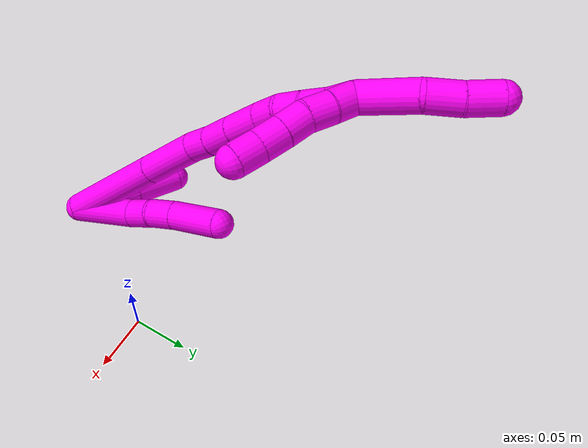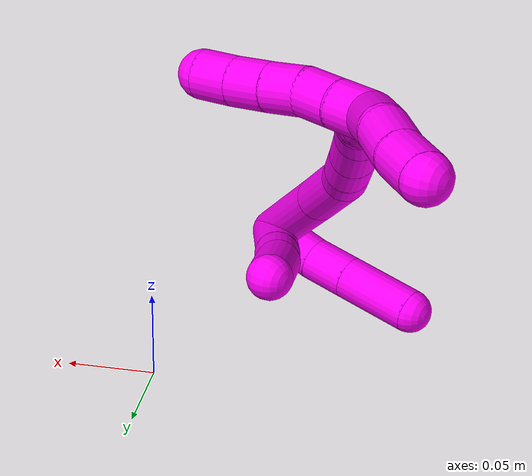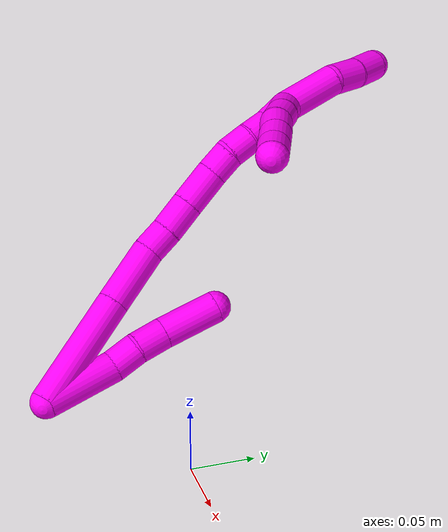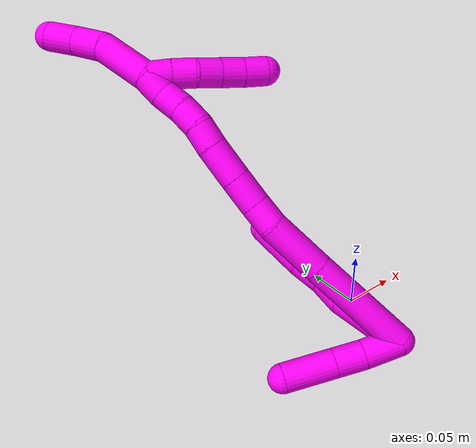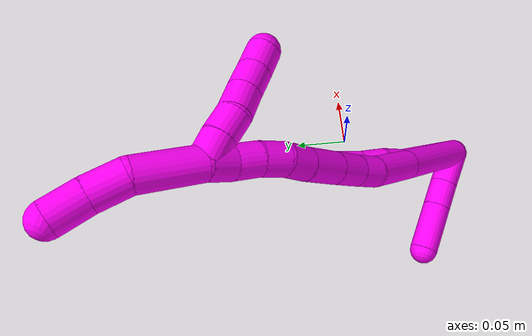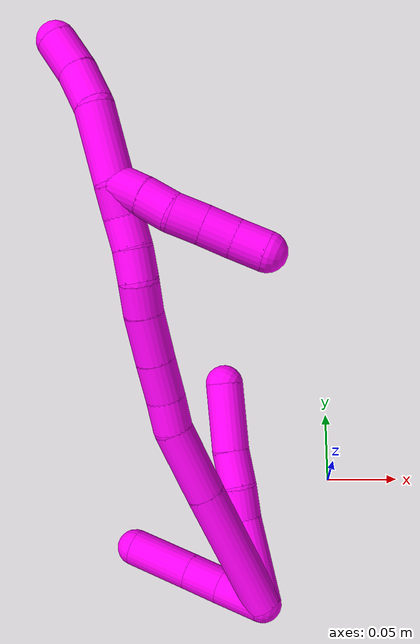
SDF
<sdf version="1.7">
 <world name="default">
  <model name="10">
   <static>0</static>
   <link name="10">
    <collision name="collision-cylinder-e_1_2_8">
     <pose>0.012486 0.019746 0.01714 -0.855941 0.445515 -0.205928</pose>
     <geometry><cylinder><radius>0.0125</radius><length>0.057951</length></cylinder></geometry>
     <surface>
      <friction><ode><mu>1.16</mu><mu2>1.16</mu2><slip1>0</slip1><slip2>0</slip2></ode></friction>
      <contact><ode><kp>1e+06</kp><kd>1</kd><max_vel>0</max_vel><min_depth>0.001</min_depth></ode></contact>
     </surface>
    </collision>
    <visual name="visual-cylinder-e_1_2_8">
     <pose>0.012486 0.019746 0.01714 -0.855941 0.445515 -0.205928</pose>
     <geometry><cylinder><radius>0.0125</radius><length>0.057951</length></cylinder></geometry>
     <material><ambient>1 0 0.964706 1</ambient></material>
    </visual>
    <collision name="collision-cylinder-e_2_8_9">
     <pose>0.032205 0.046295 0.039671 -0.900559 0.694647 -0.346472</pose>
     <geometry><cylinder><radius>0.0125</radius><length>0.022598</length></cylinder></geometry>
     <surface>
      <friction><ode><mu>1.16</mu><mu2>1.16</mu2><slip1>0</slip1><slip2>0</slip2></ode></friction>
      <contact><ode><kp>1e+06</kp><kd>1</kd><max_vel>0</max_vel><min_depth>0.001</min_depth></ode></contact>
     </surface>
    </collision>
    <visual name="visual-cylinder-e_2_8_9">
     <pose>0.032205 0.046295 0.039671 -0.900559 0.694647 -0.346472</pose>
     <geometry><cylinder><radius>0.0125</radius><length>0.022598</length></cylinder></geometry>
     <material><ambient>1 0 0.964706 1</ambient></material>
    </visual>
    <collision name="collision-cylinder-e_3_9_10">
     <pose>0.045176 0.061185 0.051814 -0.87528 0.49877 -0.237218</pose>
     <geometry><cylinder><radius>0.0125</radius><length>0.02399</length></cylinder></geometry>
     <surface>
      <friction><ode><mu>1.16</mu><mu2>1.16</mu2><slip1>0</slip1><slip2>0</slip2></ode></friction>
      <contact><ode><kp>1e+06</kp><kd>1</kd><max_vel>0</max_vel><min_depth>0.001</min_depth></ode></contact>
     </surface>
    </collision>
    <visual name="visual-cylinder-e_3_9_10">
     <pose>0.045176 0.061185 0.051814 -0.87528 0.49877 -0.237218</pose>
     <geometry><cylinder><radius>0.0125</radius><length>0.02399</length></cylinder></geometry>
     <material><ambient>1 0 0.964706 1</ambient></material>
    </visual>
    <collision name="collision-cylinder-e_4_10_6">
     <pose>0.062346 0.085788 0.069202 -0.998593 0.527023 -0.292179</pose>
     <geometry><cylinder><radius>0.0125</radius><length>0.045461</length></cylinder></geometry>
     <surface>
      <friction><ode><mu>1.16</mu><mu2>1.16</mu2><slip1>0</slip1><slip2>0</slip2></ode></friction>
      <contact><ode><kp>1e+06</kp><kd>1</kd><max_vel>0</max_vel><min_depth>0.001</min_depth></ode></contact>
     </surface>
    </collision>
    <visual name="visual-cylinder-e_4_10_6">
     <pose>0.062346 0.085788 0.069202 -0.998593 0.527023 -0.292179</pose>
     <geometry><cylinder><radius>0.0125</radius><length>0.045461</length></cylinder></geometry>
     <material><ambient>1 0 0.964706 1</ambient></material>
    </visual>
    <collision name="collision-cylinder-e_1_2_11">
     <pose>-0.003907 0.001347 0.015277 -0.087951 -0.249436 0.011033</pose>
     <geometry><cylinder><radius>0.0125</radius><length>0.031652</length></cylinder></geometry>
     <surface>
      <friction><ode><mu>1.16</mu><mu2>1.16</mu2><slip1>0</slip1><slip2>0</slip2></ode></friction>
      <contact><ode><kp>1e+06</kp><kd>1</kd><max_vel>0</max_vel><min_depth>0.001</min_depth></ode></contact>
     </surface>
    </collision>
    <visual name="visual-cylinder-e_1_2_11">
     <pose>-0.003907 0.001347 0.015277 -0.087951 -0.249436 0.011033</pose>
     <geometry><cylinder><radius>0.0125</radius><length>0.031652</length></cylinder></geometry>
     <material><ambient>1 0 0.964706 1</ambient></material>
    </visual>
    <collision name="collision-cylinder-e_2_11_12">
     <pose>-0.009508 0.003341 0.042941 -0.052161 -0.135733 0.003546</pose>
     <geometry><cylinder><radius>0.0125</radius><length>0.025038</length></cylinder></geometry>
     <surface>
      <friction><ode><mu>1.16</mu><mu2>1.16</mu2><slip1>0</slip1><slip2>0</slip2></ode></friction>
      <contact><ode><kp>1e+06</kp><kd>1</kd><max_vel>0</max_vel><min_depth>0.001</min_depth></ode></contact>
     </surface>
    </collision>
    <visual name="visual-cylinder-e_2_11_12">
     <pose>-0.009508 0.003341 0.042941 -0.052161 -0.135733 0.003546</pose>
     <geometry><cylinder><radius>0.0125</radius><length>0.025038</length></cylinder></geometry>
     <material><ambient>1 0 0.964706 1</ambient></material>
    </visual>
    <collision name="collision-cylinder-e_3_12_5">
     <pose>-0.014154 0.005041 0.076755 -0.049145 -0.136757 0.003366</pose>
     <geometry><cylinder><radius>0.0125</radius><length>0.043309</length></cylinder></geometry>
     <surface>
      <friction><ode><mu>1.16</mu><mu2>1.16</mu2><slip1>0</slip1><slip2>0</slip2></ode></friction>
      <contact><ode><kp>1e+06</kp><kd>1</kd><max_vel>0</max_vel><min_depth>0.001</min_depth></ode></contact>
     </surface>
    </collision>
    <visual name="visual-cylinder-e_3_12_5">
     <pose>-0.014154 0.005041 0.076755 -0.049145 -0.136757 0.003366</pose>
     <geometry><cylinder><radius>0.0125</radius><length>0.043309</length></cylinder></geometry>
     <material><ambient>1 0 0.964706 1</ambient></material>
    </visual>
    <collision name="collision-cylinder-e_1_2_13">
     <pose>0.032576 0.01325 0.029068 -0.427705 0.795173 -0.181901</pose>
     <geometry><cylinder><radius>0.0125</radius><length>0.091252</length></cylinder></geometry>
     <surface>
      <friction><ode><mu>1.16</mu><mu2>1.16</mu2><slip1>0</slip1><slip2>0</slip2></ode></friction>
      <contact><ode><kp>1e+06</kp><kd>1</kd><max_vel>0</max_vel><min_depth>0.001</min_depth></ode></contact>
     </surface>
    </collision>
    <visual name="visual-cylinder-e_1_2_13">
     <pose>0.032576 0.01325 0.029068 -0.427705 0.795173 -0.181901</pose>
     <geometry><cylinder><radius>0.0125</radius><length>0.091252</length></cylinder></geometry>
     <material><ambient>1 0 0.964706 1</ambient></material>
    </visual>
    <collision name="collision-cylinder-e_2_13_14">
     <pose>0.08292 0.033891 0.073636 -0.444864 0.802432 -0.191313</pose>
     <geometry><cylinder><radius>0.0125</radius><length>0.049419</length></cylinder></geometry>
     <surface>
      <friction><ode><mu>1.16</mu><mu2>1.16</mu2><slip1>0</slip1><slip2>0</slip2></ode></friction>
      <contact><ode><kp>1e+06</kp><kd>1</kd><max_vel>0</max_vel><min_depth>0.001</min_depth></ode></contact>
     </surface>
    </collision>
    <visual name="visual-cylinder-e_2_13_14">
     <pose>0.08292 0.033891 0.073636 -0.444864 0.802432 -0.191313</pose>
     <geometry><cylinder><radius>0.0125</radius><length>0.049419</length></cylinder></geometry>
     <material><ambient>1 0 0.964706 1</ambient></material>
    </visual>
    <collision name="collision-cylinder-e_3_14_15">
     <pose>0.108805 0.04612 0.094261 -0.756815 0.855832 -0.358763</pose>
     <geometry><cylinder><radius>0.0125</radius><length>0.021501</length></cylinder></geometry>
     <surface>
      <friction><ode><mu>1.16</mu><mu2>1.16</mu2><slip1>0</slip1><slip2>0</slip2></ode></friction>
      <contact><ode><kp>1e+06</kp><kd>1</kd><max_vel>0</max_vel><min_depth>0.001</min_depth></ode></contact>
     </surface>
    </collision>
    <visual name="visual-cylinder-e_3_14_15">
     <pose>0.108805 0.04612 0.094261 -0.756815 0.855832 -0.358763</pose>
     <geometry><cylinder><radius>0.0125</radius><length>0.021501</length></cylinder></geometry>
     <material><ambient>1 0 0.964706 1</ambient></material>
    </visual>
    <collision name="collision-cylinder-e_4_15_16">
     <pose>0.127345 0.055919 0.105502 -0.681305 0.923718 -0.349292</pose>
     <geometry><cylinder><radius>0.0125</radius><length>0.026125</length></cylinder></geometry>
     <surface>
      <friction><ode><mu>1.16</mu><mu2>1.16</mu2><slip1>0</slip1><slip2>0</slip2></ode></friction>
      <contact><ode><kp>1e+06</kp><kd>1</kd><max_vel>0</max_vel><min_depth>0.001</min_depth></ode></contact>
     </surface>
    </collision>
    <visual name="visual-cylinder-e_4_15_16">
     <pose>0.127345 0.055919 0.105502 -0.681305 0.923718 -0.349292</pose>
     <geometry><cylinder><radius>0.0125</radius><length>0.026125</length></cylinder></geometry>
     <material><ambient>1 0 0.964706 1</ambient></material>
    </visual>
    <collision name="collision-cylinder-e_5_16_17">
     <pose>0.150271 0.067007 0.118723 -0.711781 0.927064 -0.367421</pose>
     <geometry><cylinder><radius>0.0125</radius><length>0.031265</length></cylinder></geometry>
     <surface>
      <friction><ode><mu>1.16</mu><mu2>1.16</mu2><slip1>0</slip1><slip2>0</slip2></ode></friction>
      <contact><ode><kp>1e+06</kp><kd>1</kd><max_vel>0</max_vel><min_depth>0.001</min_depth></ode></contact>
     </surface>
    </collision>
    <visual name="visual-cylinder-e_5_16_17">
     <pose>0.150271 0.067007 0.118723 -0.711781 0.927064 -0.367421</pose>
     <geometry><cylinder><radius>0.0125</radius><length>0.031265</length></cylinder></geometry>
     <material><ambient>1 0 0.964706 1</ambient></material>
    </visual>
    <collision name="collision-cylinder-e_6_17_18">
     <pose>0.171014 0.077608 0.129777 -0.847565 0.944051 -0.452712</pose>
     <geometry><cylinder><radius>0.0125</radius><length>0.020347</length></cylinder></geometry>
     <surface>
      <friction><ode><mu>1.16</mu><mu2>1.16</mu2><slip1>0</slip1><slip2>0</slip2></ode></friction>
      <contact><ode><kp>1e+06</kp><kd>1</kd><max_vel>0</max_vel><min_depth>0.001</min_depth></ode></contact>
     </surface>
    </collision>
    <visual name="visual-cylinder-e_6_17_18">
     <pose>0.171014 0.077608 0.129777 -0.847565 0.944051 -0.452712</pose>
     <geometry><cylinder><radius>0.0125</radius><length>0.020347</length></cylinder></geometry>
     <material><ambient>1 0 0.964706 1</ambient></material>
    </visual>
    <collision name="collision-cylinder-e_7_18_19">
     <pose>0.185684 0.087944 0.138683 -0.868849 0.697183 -0.334113</pose>
     <geometry><cylinder><radius>0.0125</radius><length>0.020029</length></cylinder></geometry>
     <surface>
      <friction><ode><mu>1.16</mu><mu2>1.16</mu2><slip1>0</slip1><slip2>0</slip2></ode></friction>
      <contact><ode><kp>1e+06</kp><kd>1</kd><max_vel>0</max_vel><min_depth>0.001</min_depth></ode></contact>
     </surface>
    </collision>
    <visual name="visual-cylinder-e_7_18_19">
     <pose>0.185684 0.087944 0.138683 -0.868849 0.697183 -0.334113</pose>
     <geometry><cylinder><radius>0.0125</radius><length>0.020029</length></cylinder></geometry>
     <material><ambient>1 0 0.964706 1</ambient></material>
    </visual>
    <collision name="collision-cylinder-e_8_19_20">
     <pose>0.197596 0.099659 0.149655 -0.771734 0.578656 -0.240686</pose>
     <geometry><cylinder><radius>0.0125</radius><length>0.020046</length></cylinder></geometry>
     <surface>
      <friction><ode><mu>1.16</mu><mu2>1.16</mu2><slip1>0</slip1><slip2>0</slip2></ode></friction>
      <contact><ode><kp>1e+06</kp><kd>1</kd><max_vel>0</max_vel><min_depth>0.001</min_depth></ode></contact>
     </surface>
    </collision>
    <visual name="visual-cylinder-e_8_19_20">
     <pose>0.197596 0.099659 0.149655 -0.771734 0.578656 -0.240686</pose>
     <geometry><cylinder><radius>0.0125</radius><length>0.020046</length></cylinder></geometry>
     <material><ambient>1 0 0.964706 1</ambient></material>
    </visual>
    <collision name="collision-cylinder-e_9_20_1">
     <pose>0.210021 0.11035 0.161009 -0.736297 0.766784 -0.308698</pose>
     <geometry><cylinder><radius>0.0125</radius><length>0.020016</length></cylinder></geometry>
     <surface>
      <friction><ode><mu>1.16</mu><mu2>1.16</mu2><slip1>0</slip1><slip2>0</slip2></ode></friction>
      <contact><ode><kp>1e+06</kp><kd>1</kd><max_vel>0</max_vel><min_depth>0.001</min_depth></ode></contact>
     </surface>
    </collision>
    <visual name="visual-cylinder-e_9_20_1">
     <pose>0.210021 0.11035 0.161009 -0.736297 0.766784 -0.308698</pose>
     <geometry><cylinder><radius>0.0125</radius><length>0.020016</length></cylinder></geometry>
     <material><ambient>1 0 0.964706 1</ambient></material>
    </visual>
    <collision name="collision-cylinder-e_1_1_21">
     <pose>0.216954 0.114567 0.156368 3.07925 -0.001104 -0.035416</pose>
     <geometry><cylinder><radius>0.0125</radius><length>0.02</length></cylinder></geometry>
     <surface>
      <friction><ode><mu>1.16</mu><mu2>1.16</mu2><slip1>0</slip1><slip2>0</slip2></ode></friction>
      <contact><ode><kp>1e+06</kp><kd>1</kd><max_vel>0</max_vel><min_depth>0.001</min_depth></ode></contact>
     </surface>
    </collision>
    <visual name="visual-cylinder-e_1_1_21">
     <pose>0.216954 0.114567 0.156368 3.07925 -0.001104 -0.035416</pose>
     <geometry><cylinder><radius>0.0125</radius><length>0.02</length></cylinder></geometry>
     <material><ambient>1 0 0.964706 1</ambient></material>
    </visual>
    <collision name="collision-cylinder-e_2_21_22">
     <pose>0.21635 0.112663 0.136488 3.01286 -0.059303 -0.862558</pose>
     <geometry><cylinder><radius>0.0125</radius><length>0.02</length></cylinder></geometry>
     <surface>
      <friction><ode><mu>1.16</mu><mu2>1.16</mu2><slip1>0</slip1><slip2>0</slip2></ode></friction>
      <contact><ode><kp>1e+06</kp><kd>1</kd><max_vel>0</max_vel><min_depth>0.001</min_depth></ode></contact>
     </surface>
    </collision>
    <visual name="visual-cylinder-e_2_21_22">
     <pose>0.21635 0.112663 0.136488 3.01286 -0.059303 -0.862558</pose>
     <geometry><cylinder><radius>0.0125</radius><length>0.02</length></cylinder></geometry>
     <material><ambient>1 0 0.964706 1</ambient></material>
    </visual>
    <collision name="collision-cylinder-e_3_22_23">
     <pose>0.214444 0.112356 0.116723 -3.04307 -0.131773 1.85824</pose>
     <geometry><cylinder><radius>0.0125</radius><length>0.02</length></cylinder></geometry>
     <surface>
      <friction><ode><mu>1.16</mu><mu2>1.16</mu2><slip1>0</slip1><slip2>0</slip2></ode></friction>
      <contact><ode><kp>1e+06</kp><kd>1</kd><max_vel>0</max_vel><min_depth>0.001</min_depth></ode></contact>
     </surface>
    </collision>
    <visual name="visual-cylinder-e_3_22_23">
     <pose>0.214444 0.112356 0.116723 -3.04307 -0.131773 1.85824</pose>
     <geometry><cylinder><radius>0.0125</radius><length>0.02</length></cylinder></geometry>
     <material><ambient>1 0 0.964706 1</ambient></material>
    </visual>
    <collision name="collision-cylinder-e_4_23_24">
     <pose>0.211873 0.113878 0.096952 -3.08645 -0.125956 2.31711</pose>
     <geometry><cylinder><radius>0.0125</radius><length>0.02</length></cylinder></geometry>
     <surface>
      <friction><ode><mu>1.16</mu><mu2>1.16</mu2><slip1>0</slip1><slip2>0</slip2></ode></friction>
      <contact><ode><kp>1e+06</kp><kd>1</kd><max_vel>0</max_vel><min_depth>0.001</min_depth></ode></contact>
     </surface>
    </collision>
    <visual name="visual-cylinder-e_4_23_24">
     <pose>0.211873 0.113878 0.096952 -3.08645 -0.125956 2.31711</pose>
     <geometry><cylinder><radius>0.0125</radius><length>0.02</length></cylinder></geometry>
     <material><ambient>1 0 0.964706 1</ambient></material>
    </visual>
    <collision name="collision-cylinder-e_5_24_4">
     <pose>0.209849 0.114873 0.077086 -3.09669 -0.076863 2.08438</pose>
     <geometry><cylinder><radius>0.0125</radius><length>0.02</length></cylinder></geometry>
     <surface>
      <friction><ode><mu>1.16</mu><mu2>1.16</mu2><slip1>0</slip1><slip2>0</slip2></ode></friction>
      <contact><ode><kp>1e+06</kp><kd>1</kd><max_vel>0</max_vel><min_depth>0.001</min_depth></ode></contact>
     </surface>
    </collision>
    <visual name="visual-cylinder-e_5_24_4">
     <pose>0.209849 0.114873 0.077086 -3.09669 -0.076863 2.08438</pose>
     <geometry><cylinder><radius>0.0125</radius><length>0.02</length></cylinder></geometry>
     <material><ambient>1 0 0.964706 1</ambient></material>
    </visual>
    <collision name="collision-cylinder-e_1_1_25">
     <pose>0.228324 0.130328 0.180802 -0.80852 0.497256 -0.216384</pose>
     <geometry><cylinder><radius>0.0125</radius><length>0.047627</length></cylinder></geometry>
     <surface>
      <friction><ode><mu>1.16</mu><mu2>1.16</mu2><slip1>0</slip1><slip2>0</slip2></ode></friction>
      <contact><ode><kp>1e+06</kp><kd>1</kd><max_vel>0</max_vel><min_depth>0.001</min_depth></ode></contact>
     </surface>
    </collision>
    <visual name="visual-cylinder-e_1_1_25">
     <pose>0.228324 0.130328 0.180802 -0.80852 0.497256 -0.216384</pose>
     <geometry><cylinder><radius>0.0125</radius><length>0.047627</length></cylinder></geometry>
     <material><ambient>1 0 0.964706 1</ambient></material>
    </visual>
    <collision name="collision-cylinder-e_2_25_26">
     <pose>0.242029 0.153789 0.205234 -0.69525 0.178548 -0.064845</pose>
     <geometry><cylinder><radius>0.0125</radius><length>0.026408</length></cylinder></geometry>
     <surface>
      <friction><ode><mu>1.16</mu><mu2>1.16</mu2><slip1>0</slip1><slip2>0</slip2></ode></friction>
      <contact><ode><kp>1e+06</kp><kd>1</kd><max_vel>0</max_vel><min_depth>0.001</min_depth></ode></contact>
     </surface>
    </collision>
    <visual name="visual-cylinder-e_2_25_26">
     <pose>0.242029 0.153789 0.205234 -0.69525 0.178548 -0.064845</pose>
     <geometry><cylinder><radius>0.0125</radius><length>0.026408</length></cylinder></geometry>
     <material><ambient>1 0 0.964706 1</ambient></material>
    </visual>
    <collision name="collision-cylinder-e_3_26_3">
     <pose>0.246732 0.168855 0.226053 -0.556322 0.182678 -0.0523</pose>
     <geometry><cylinder><radius>0.0125</radius><length>0.025965</length></cylinder></geometry>
     <surface>
      <friction><ode><mu>1.16</mu><mu2>1.16</mu2><slip1>0</slip1><slip2>0</slip2></ode></friction>
      <contact><ode><kp>1e+06</kp><kd>1</kd><max_vel>0</max_vel><min_depth>0.001</min_depth></ode></contact>
     </surface>
    </collision>
    <visual name="visual-cylinder-e_3_26_3">
     <pose>0.246732 0.168855 0.226053 -0.556322 0.182678 -0.0523</pose>
     <geometry><cylinder><radius>0.0125</radius><length>0.025965</length></cylinder></geometry>
     <material><ambient>1 0 0.964706 1</ambient></material>
    </visual>
    <collision name="collision-sphere-3">
     <pose>0.249091 0.175596 0.236894 0 -0 0</pose>
     <geometry><sphere><radius>0.0125</radius></sphere></geometry>
     <surface>
      <friction><ode><mu>1.16</mu><mu2>1.16</mu2><slip1>0</slip1><slip2>0</slip2></ode></friction>
      <contact><ode><kp>1e+06</kp><kd>1</kd><max_vel>0</max_vel><min_depth>0.001</min_depth></ode></contact>
     </surface>
    </collision>
    <visual name="visual-sphere-3">
     <pose>0.249091 0.175596 0.236894 0 -0 0</pose>
     <geometry><sphere><radius>0.0125</radius></sphere></geometry>
     <material><ambient>1 0 0.964706 1</ambient></material>
    </visual>
    <collision name="collision-sphere-26">
     <pose>0.244374 0.162113 0.215212 0 -0 0</pose>
     <geometry><sphere><radius>0.0125</radius></sphere></geometry>
     <surface>
      <friction><ode><mu>1.16</mu><mu2>1.16</mu2><slip1>0</slip1><slip2>0</slip2></ode></friction>
      <contact><ode><kp>1e+06</kp><kd>1</kd><max_vel>0</max_vel><min_depth>0.001</min_depth></ode></contact>
     </surface>
    </collision>
    <visual name="visual-sphere-26">
     <pose>0.244374 0.162113 0.215212 0 -0 0</pose>
     <geometry><sphere><radius>0.0125</radius></sphere></geometry>
     <material><ambient>1 0 0.964706 1</ambient></material>
    </visual>
    <collision name="collision-sphere-25">
     <pose>0.239684 0.145466 0.195256 0 -0 0</pose>
     <geometry><sphere><radius>0.0125</radius></sphere></geometry>
     <surface>
      <friction><ode><mu>1.16</mu><mu2>1.16</mu2><slip1>0</slip1><slip2>0</slip2></ode></friction>
      <contact><ode><kp>1e+06</kp><kd>1</kd><max_vel>0</max_vel><min_depth>0.001</min_depth></ode></contact>
     </surface>
    </collision>
    <visual name="visual-sphere-25">
     <pose>0.239684 0.145466 0.195256 0 -0 0</pose>
     <geometry><sphere><radius>0.0125</radius></sphere></geometry>
     <material><ambient>1 0 0.964706 1</ambient></material>
    </visual>
    <collision name="collision-sphere-4">
     <pose>0.209081 0.11532 0.067125 0 -0 0</pose>
     <geometry><sphere><radius>0.0125</radius></sphere></geometry>
     <surface>
      <friction><ode><mu>1.16</mu><mu2>1.16</mu2><slip1>0</slip1><slip2>0</slip2></ode></friction>
      <contact><ode><kp>1e+06</kp><kd>1</kd><max_vel>0</max_vel><min_depth>0.001</min_depth></ode></contact>
     </surface>
    </collision>
    <visual name="visual-sphere-4">
     <pose>0.209081 0.11532 0.067125 0 -0 0</pose>
     <geometry><sphere><radius>0.0125</radius></sphere></geometry>
     <material><ambient>1 0 0.964706 1</ambient></material>
    </visual>
    <collision name="collision-sphere-24">
     <pose>0.210617 0.114425 0.087046 0 -0 0</pose>
     <geometry><sphere><radius>0.0125</radius></sphere></geometry>
     <surface>
      <friction><ode><mu>1.16</mu><mu2>1.16</mu2><slip1>0</slip1><slip2>0</slip2></ode></friction>
      <contact><ode><kp>1e+06</kp><kd>1</kd><max_vel>0</max_vel><min_depth>0.001</min_depth></ode></contact>
     </surface>
    </collision>
    <visual name="visual-sphere-24">
     <pose>0.210617 0.114425 0.087046 0 -0 0</pose>
     <geometry><sphere><radius>0.0125</radius></sphere></geometry>
     <material><ambient>1 0 0.964706 1</ambient></material>
    </visual>
    <collision name="collision-sphere-23">
     <pose>0.21313 0.113331 0.106858 0 -0 0</pose>
     <geometry><sphere><radius>0.0125</radius></sphere></geometry>
     <surface>
      <friction><ode><mu>1.16</mu><mu2>1.16</mu2><slip1>0</slip1><slip2>0</slip2></ode></friction>
      <contact><ode><kp>1e+06</kp><kd>1</kd><max_vel>0</max_vel><min_depth>0.001</min_depth></ode></contact>
     </surface>
    </collision>
    <visual name="visual-sphere-23">
     <pose>0.21313 0.113331 0.106858 0 -0 0</pose>
     <geometry><sphere><radius>0.0125</radius></sphere></geometry>
     <material><ambient>1 0 0.964706 1</ambient></material>
    </visual>
    <collision name="collision-sphere-22">
     <pose>0.215757 0.111381 0.126588 0 -0 0</pose>
     <geometry><sphere><radius>0.0125</radius></sphere></geometry>
     <surface>
      <friction><ode><mu>1.16</mu><mu2>1.16</mu2><slip1>0</slip1><slip2>0</slip2></ode></friction>
      <contact><ode><kp>1e+06</kp><kd>1</kd><max_vel>0</max_vel><min_depth>0.001</min_depth></ode></contact>
     </surface>
    </collision>
    <visual name="visual-sphere-22">
     <pose>0.215757 0.111381 0.126588 0 -0 0</pose>
     <geometry><sphere><radius>0.0125</radius></sphere></geometry>
     <material><ambient>1 0 0.964706 1</ambient></material>
    </visual>
    <collision name="collision-sphere-21">
     <pose>0.216943 0.113944 0.146388 0 -0 0</pose>
     <geometry><sphere><radius>0.0125</radius></sphere></geometry>
     <surface>
      <friction><ode><mu>1.16</mu><mu2>1.16</mu2><slip1>0</slip1><slip2>0</slip2></ode></friction>
      <contact><ode><kp>1e+06</kp><kd>1</kd><max_vel>0</max_vel><min_depth>0.001</min_depth></ode></contact>
     </surface>
    </collision>
    <visual name="visual-sphere-21">
     <pose>0.216943 0.113944 0.146388 0 -0 0</pose>
     <geometry><sphere><radius>0.0125</radius></sphere></geometry>
     <material><ambient>1 0 0.964706 1</ambient></material>
    </visual>
    <collision name="collision-sphere-1">
     <pose>0.216965 0.11519 0.166349 0 -0 0</pose>
     <geometry><sphere><radius>0.0125</radius></sphere></geometry>
     <surface>
      <friction><ode><mu>1.16</mu><mu2>1.16</mu2><slip1>0</slip1><slip2>0</slip2></ode></friction>
      <contact><ode><kp>1e+06</kp><kd>1</kd><max_vel>0</max_vel><min_depth>0.001</min_depth></ode></contact>
     </surface>
    </collision>
    <visual name="visual-sphere-1">
     <pose>0.216965 0.11519 0.166349 0 -0 0</pose>
     <geometry><sphere><radius>0.0125</radius></sphere></geometry>
     <material><ambient>1 0 0.964706 1</ambient></material>
    </visual>
    <collision name="collision-sphere-11">
     <pose>-0.007814 0.002694 0.030554 0 -0 0</pose>
     <geometry><sphere><radius>0.0125</radius></sphere></geometry>
     <surface>
      <friction><ode><mu>1.16</mu><mu2>1.16</mu2><slip1>0</slip1><slip2>0</slip2></ode></friction>
      <contact><ode><kp>1e+06</kp><kd>1</kd><max_vel>0</max_vel><min_depth>0.001</min_depth></ode></contact>
     </surface>
    </collision>
    <visual name="visual-sphere-11">
     <pose>-0.007814 0.002694 0.030554 0 -0 0</pose>
     <geometry><sphere><radius>0.0125</radius></sphere></geometry>
     <material><ambient>1 0 0.964706 1</ambient></material>
    </visual>
    <collision name="collision-sphere-6">
     <pose>0.073778 0.102305 0.07984 0 -0 0</pose>
     <geometry><sphere><radius>0.0125</radius></sphere></geometry>
     <surface>
      <friction><ode><mu>1.16</mu><mu2>1.16</mu2><slip1>0</slip1><slip2>0</slip2></ode></friction>
      <contact><ode><kp>1e+06</kp><kd>1</kd><max_vel>0</max_vel><min_depth>0.001</min_depth></ode></contact>
     </surface>
    </collision>
    <visual name="visual-sphere-6">
     <pose>0.073778 0.102305 0.07984 0 -0 0</pose>
     <geometry><sphere><radius>0.0125</radius></sphere></geometry>
     <material><ambient>1 0 0.964706 1</ambient></material>
    </visual>
    <collision name="collision-sphere-10">
     <pose>0.050913 0.069272 0.058563 0 -0 0</pose>
     <geometry><sphere><radius>0.0125</radius></sphere></geometry>
     <surface>
      <friction><ode><mu>1.16</mu><mu2>1.16</mu2><slip1>0</slip1><slip2>0</slip2></ode></friction>
      <contact><ode><kp>1e+06</kp><kd>1</kd><max_vel>0</max_vel><min_depth>0.001</min_depth></ode></contact>
     </surface>
    </collision>
    <visual name="visual-sphere-10">
     <pose>0.050913 0.069272 0.058563 0 -0 0</pose>
     <geometry><sphere><radius>0.0125</radius></sphere></geometry>
     <material><ambient>1 0 0.964706 1</ambient></material>
    </visual>
    <collision name="collision-sphere-9">
     <pose>0.039438 0.053098 0.045064 0 -0 0</pose>
     <geometry><sphere><radius>0.0125</radius></sphere></geometry>
     <surface>
      <friction><ode><mu>1.16</mu><mu2>1.16</mu2><slip1>0</slip1><slip2>0</slip2></ode></friction>
      <contact><ode><kp>1e+06</kp><kd>1</kd><max_vel>0</max_vel><min_depth>0.001</min_depth></ode></contact>
     </surface>
    </collision>
    <visual name="visual-sphere-9">
     <pose>0.039438 0.053098 0.045064 0 -0 0</pose>
     <geometry><sphere><radius>0.0125</radius></sphere></geometry>
     <material><ambient>1 0 0.964706 1</ambient></material>
    </visual>
    <collision name="collision-sphere-2">
     <geometry><sphere><radius>0.0125</radius></sphere></geometry>
     <surface>
      <friction><ode><mu>1.16</mu><mu2>1.16</mu2><slip1>0</slip1><slip2>0</slip2></ode></friction>
      <contact><ode><kp>1e+06</kp><kd>1</kd><max_vel>0</max_vel><min_depth>0.001</min_depth></ode></contact>
     </surface>
    </collision>
    <visual name="visual-sphere-2">
     <geometry><sphere><radius>0.0125</radius></sphere></geometry>
     <material><ambient>1 0 0.964706 1</ambient></material>
    </visual>
    <collision name="collision-sphere-19">
     <pose>0.192114 0.093807 0.143641 0 -0 0</pose>
     <geometry><sphere><radius>0.0125</radius></sphere></geometry>
     <surface>
      <friction><ode><mu>1.16</mu><mu2>1.16</mu2><slip1>0</slip1><slip2>0</slip2></ode></friction>
      <contact><ode><kp>1e+06</kp><kd>1</kd><max_vel>0</max_vel><min_depth>0.001</min_depth></ode></contact>
     </surface>
    </collision>
    <visual name="visual-sphere-19">
     <pose>0.192114 0.093807 0.143641 0 -0 0</pose>
     <geometry><sphere><radius>0.0125</radius></sphere></geometry>
     <material><ambient>1 0 0.964706 1</ambient></material>
    </visual>
    <collision name="collision-sphere-8">
     <pose>0.024972 0.039492 0.034279 0 -0 0</pose>
     <geometry><sphere><radius>0.0125</radius></sphere></geometry>
     <surface>
      <friction><ode><mu>1.16</mu><mu2>1.16</mu2><slip1>0</slip1><slip2>0</slip2></ode></friction>
      <contact><ode><kp>1e+06</kp><kd>1</kd><max_vel>0</max_vel><min_depth>0.001</min_depth></ode></contact>
     </surface>
    </collision>
    <visual name="visual-sphere-8">
     <pose>0.024972 0.039492 0.034279 0 -0 0</pose>
     <geometry><sphere><radius>0.0125</radius></sphere></geometry>
     <material><ambient>1 0 0.964706 1</ambient></material>
    </visual>
    <collision name="collision-sphere-12">
     <pose>-0.011202 0.003988 0.055328 0 -0 0</pose>
     <geometry><sphere><radius>0.0125</radius></sphere></geometry>
     <surface>
      <friction><ode><mu>1.16</mu><mu2>1.16</mu2><slip1>0</slip1><slip2>0</slip2></ode></friction>
      <contact><ode><kp>1e+06</kp><kd>1</kd><max_vel>0</max_vel><min_depth>0.001</min_depth></ode></contact>
     </surface>
    </collision>
    <visual name="visual-sphere-12">
     <pose>-0.011202 0.003988 0.055328 0 -0 0</pose>
     <geometry><sphere><radius>0.0125</radius></sphere></geometry>
     <material><ambient>1 0 0.964706 1</ambient></material>
    </visual>
    <collision name="collision-sphere-5">
     <pose>-0.017106 0.006095 0.098182 0 -0 0</pose>
     <geometry><sphere><radius>0.0125</radius></sphere></geometry>
     <surface>
      <friction><ode><mu>1.16</mu><mu2>1.16</mu2><slip1>0</slip1><slip2>0</slip2></ode></friction>
      <contact><ode><kp>1e+06</kp><kd>1</kd><max_vel>0</max_vel><min_depth>0.001</min_depth></ode></contact>
     </surface>
    </collision>
    <visual name="visual-sphere-5">
     <pose>-0.017106 0.006095 0.098182 0 -0 0</pose>
     <geometry><sphere><radius>0.0125</radius></sphere></geometry>
     <material><ambient>1 0 0.964706 1</ambient></material>
    </visual>
    <collision name="collision-sphere-13">
     <pose>0.065152 0.026501 0.058136 0 -0 0</pose>
     <geometry><sphere><radius>0.0125</radius></sphere></geometry>
     <surface>
      <friction><ode><mu>1.16</mu><mu2>1.16</mu2><slip1>0</slip1><slip2>0</slip2></ode></friction>
      <contact><ode><kp>1e+06</kp><kd>1</kd><max_vel>0</max_vel><min_depth>0.001</min_depth></ode></contact>
     </surface>
    </collision>
    <visual name="visual-sphere-13">
     <pose>0.065152 0.026501 0.058136 0 -0 0</pose>
     <geometry><sphere><radius>0.0125</radius></sphere></geometry>
     <material><ambient>1 0 0.964706 1</ambient></material>
    </visual>
    <collision name="collision-sphere-14">
     <pose>0.100687 0.04128 0.089137 0 -0 0</pose>
     <geometry><sphere><radius>0.0125</radius></sphere></geometry>
     <surface>
      <friction><ode><mu>1.16</mu><mu2>1.16</mu2><slip1>0</slip1><slip2>0</slip2></ode></friction>
      <contact><ode><kp>1e+06</kp><kd>1</kd><max_vel>0</max_vel><min_depth>0.001</min_depth></ode></contact>
     </surface>
    </collision>
    <visual name="visual-sphere-14">
     <pose>0.100687 0.04128 0.089137 0 -0 0</pose>
     <geometry><sphere><radius>0.0125</radius></sphere></geometry>
     <material><ambient>1 0 0.964706 1</ambient></material>
    </visual>
    <collision name="collision-sphere-15">
     <pose>0.116923 0.050959 0.099385 0 -0 0</pose>
     <geometry><sphere><radius>0.0125</radius></sphere></geometry>
     <surface>
      <friction><ode><mu>1.16</mu><mu2>1.16</mu2><slip1>0</slip1><slip2>0</slip2></ode></friction>
      <contact><ode><kp>1e+06</kp><kd>1</kd><max_vel>0</max_vel><min_depth>0.001</min_depth></ode></contact>
     </surface>
    </collision>
    <visual name="visual-sphere-15">
     <pose>0.116923 0.050959 0.099385 0 -0 0</pose>
     <geometry><sphere><radius>0.0125</radius></sphere></geometry>
     <material><ambient>1 0 0.964706 1</ambient></material>
    </visual>
    <collision name="collision-sphere-16">
     <pose>0.137767 0.060878 0.111619 0 -0 0</pose>
     <geometry><sphere><radius>0.0125</radius></sphere></geometry>
     <surface>
      <friction><ode><mu>1.16</mu><mu2>1.16</mu2><slip1>0</slip1><slip2>0</slip2></ode></friction>
      <contact><ode><kp>1e+06</kp><kd>1</kd><max_vel>0</max_vel><min_depth>0.001</min_depth></ode></contact>
     </surface>
    </collision>
    <visual name="visual-sphere-16">
     <pose>0.137767 0.060878 0.111619 0 -0 0</pose>
     <geometry><sphere><radius>0.0125</radius></sphere></geometry>
     <material><ambient>1 0 0.964706 1</ambient></material>
    </visual>
    <collision name="collision-sphere-17">
     <pose>0.162775 0.073135 0.125828 0 -0 0</pose>
     <geometry><sphere><radius>0.0125</radius></sphere></geometry>
     <surface>
      <friction><ode><mu>1.16</mu><mu2>1.16</mu2><slip1>0</slip1><slip2>0</slip2></ode></friction>
      <contact><ode><kp>1e+06</kp><kd>1</kd><max_vel>0</max_vel><min_depth>0.001</min_depth></ode></contact>
     </surface>
    </collision>
    <visual name="visual-sphere-17">
     <pose>0.162775 0.073135 0.125828 0 -0 0</pose>
     <geometry><sphere><radius>0.0125</radius></sphere></geometry>
     <material><ambient>1 0 0.964706 1</ambient></material>
    </visual>
    <collision name="collision-sphere-18">
     <pose>0.179254 0.082081 0.133725 0 -0 0</pose>
     <geometry><sphere><radius>0.0125</radius></sphere></geometry>
     <surface>
      <friction><ode><mu>1.16</mu><mu2>1.16</mu2><slip1>0</slip1><slip2>0</slip2></ode></friction>
      <contact><ode><kp>1e+06</kp><kd>1</kd><max_vel>0</max_vel><min_depth>0.001</min_depth></ode></contact>
     </surface>
    </collision>
    <visual name="visual-sphere-18">
     <pose>0.179254 0.082081 0.133725 0 -0 0</pose>
     <geometry><sphere><radius>0.0125</radius></sphere></geometry>
     <material><ambient>1 0 0.964706 1</ambient></material>
    </visual>
    <collision name="collision-sphere-20">
     <pose>0.203077 0.10551 0.155668 0 -0 0</pose>
     <geometry><sphere><radius>0.0125</radius></sphere></geometry>
     <surface>
      <friction><ode><mu>1.16</mu><mu2>1.16</mu2><slip1>0</slip1><slip2>0</slip2></ode></friction>
      <contact><ode><kp>1e+06</kp><kd>1</kd><max_vel>0</max_vel><min_depth>0.001</min_depth></ode></contact>
     </surface>
    </collision>
    <visual name="visual-sphere-20">
     <pose>0.203077 0.10551 0.155668 0 -0 0</pose>
     <geometry><sphere><radius>0.0125</radius></sphere></geometry>
     <material><ambient>1 0 0.964706 1</ambient></material>
    </visual>
    <inertial>
     <pose>0.109673 0.065201 0.092216 0 -0 0</pose>
     <mass>0.75</mass>
     <inertia>
      <ixx>0.000123</ixx>
      <ixy>0</ixy>
      <ixz>0</ixz>
      <iyy>0.000138</iyy>
      <iyz>0</iyz>
      <izz>-0.000122</izz>
     </inertia>
    </inertial>
   </link>
   <pose>-0.050289 -0.097073 0.046796 -1.68877 -1.34242 1.25246</pose>
  </model>
 </world>
</sdf>
